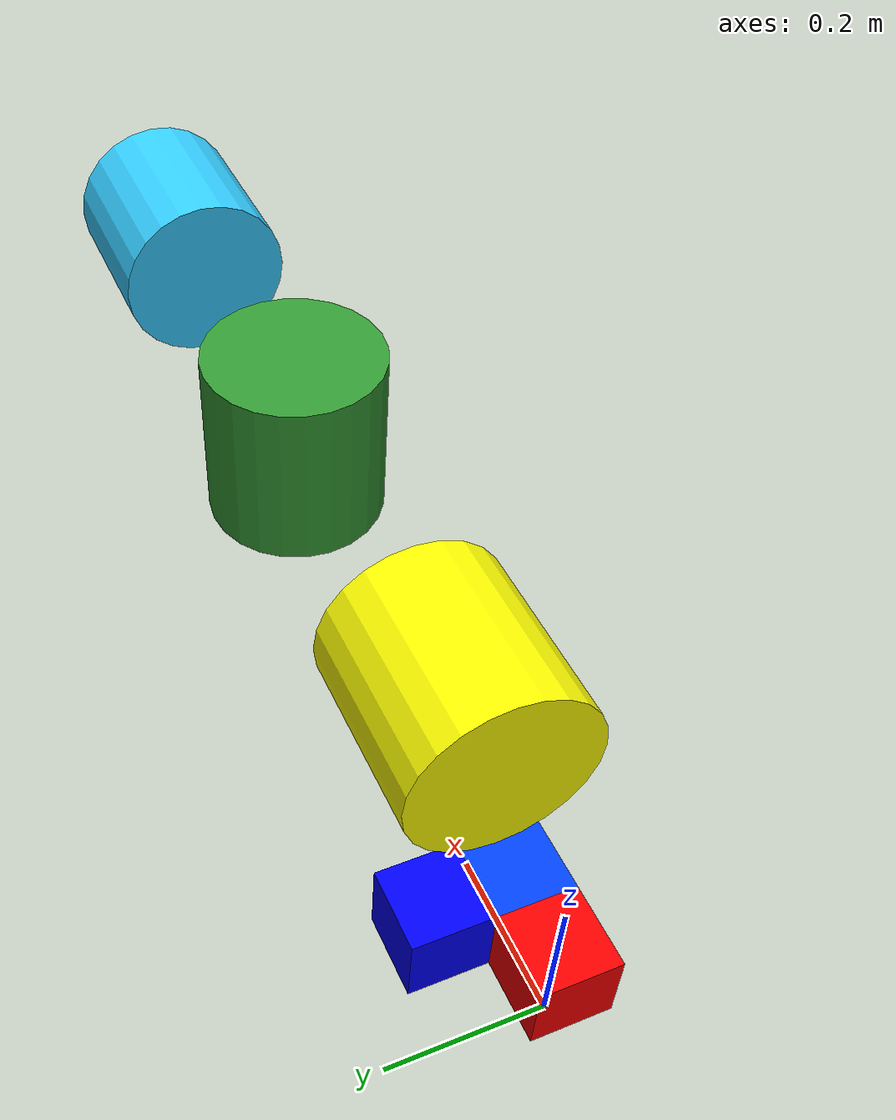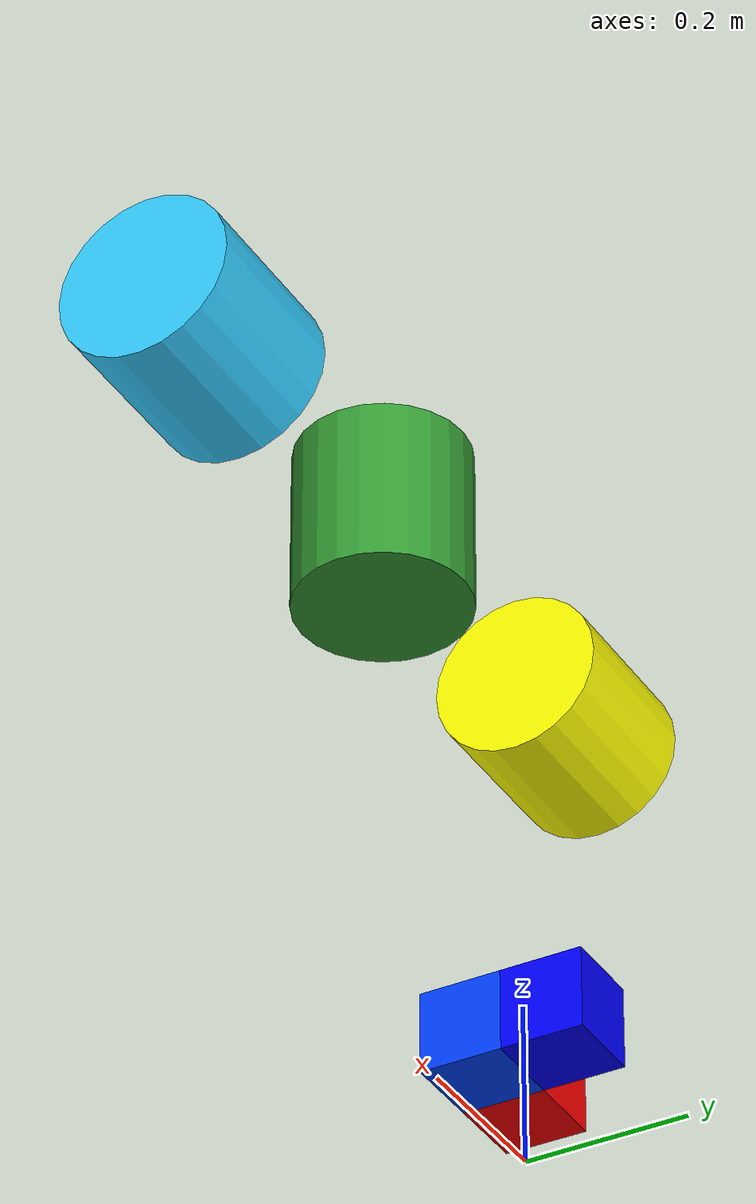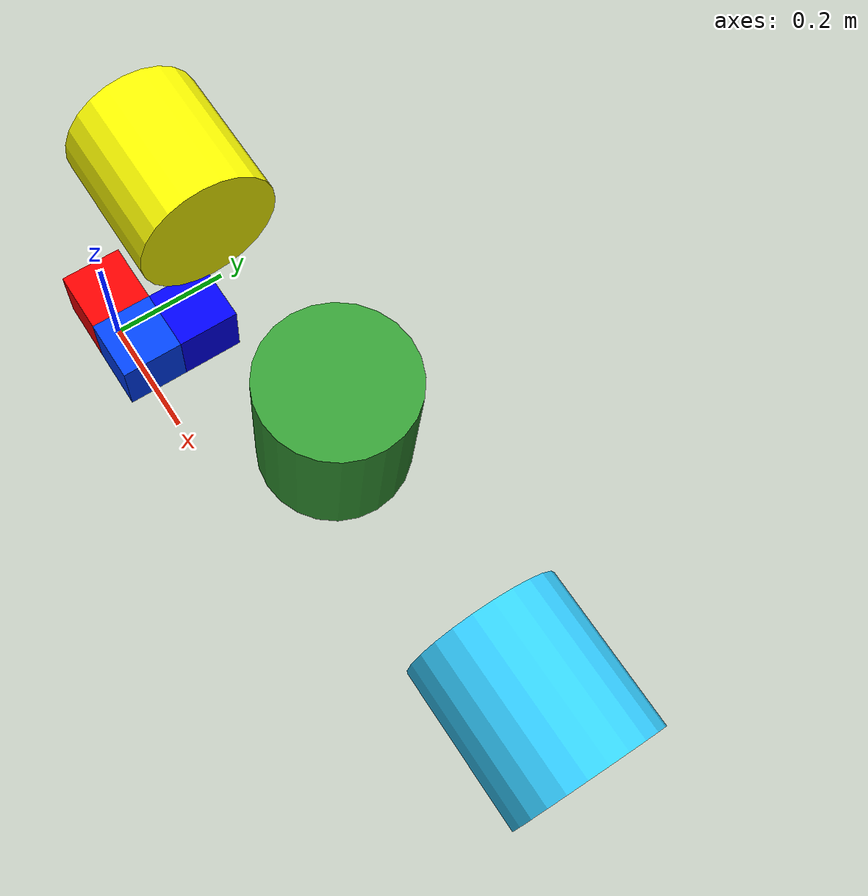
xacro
<?xml version="1.1" encoding="utf-8"?>
<!-- This URDF was made by Anton Kirilin with the help of ros wiki, Albert's guthub -->

<robot xmlns:xacro="http://ros.org/wiki/xacro" name="grip">

<!-- Creating Gloabl variables for the links -->

<xacro:property name="the_radius" value="0.1" />
<xacro:property name="the_length" value="0.2" />
<xacro:property name="the_box_size" value="0.1 0.1 0.1" />

<!--           Function for creating a box link             -->

<xacro:macro name="create_box_link" params="prefix rgba color">
 <link name="${prefix}_link">
   <visual>
     <origin xyz="0 0 0" rpy="0 0 0" />
     <geometry>
       <box size="${the_box_size}" />
     </geometry>
     <material name="${color}">
       <color rgba="${rgba}"/>
     </material>
   </visual>
 </link>
</xacro:macro>

<!--         Function for creating a cylindric link         -->

<xacro:macro name="create_cyl_link" params="prefix rpy rgba color">
 <link name="${prefix}_link">
   <visual>
     <origin xyz="0 0 0" rpy="${rpy}" />
     <geometry>
       <cylinder radius="${the_radius}" length="${the_length}"/>
     </geometry>
     <material name="${color}">
       <color rgba="${rgba}"/>
     </material>
   </visual>
 </link>
</xacro:macro>

<!--              Function for creating a prismatic joint             -->

<xacro:macro name="create_prism_joint" params="prefix xyz parent child axis">
    <joint name="joint_${prefix}" type="prismatic">
        <origin xyz="${xyz}" rpy="0.0 0.0 0.0"/>
        <parent link="${parent}_link"/>
        <child link="${child}_link"/>
        <axis xyz="${axis}"/>
        <limit effort="1.0" velocity="1.0" lower="0" upper="1.0" />
    </joint>
</xacro:macro>

<!--              Function for creating a revolute joint             -->

<xacro:macro name="create_rev_joint" params="prefix xyz parent child axis">
    <joint name="joint_${prefix}" type="revolute">
        <origin xyz="${xyz}" rpy="0.0 0.0 0.0"/>
        <parent link="${parent}_link"/>
        <child link="${child}_link"/>
        <axis xyz="${axis}"/>
        <limit effort="1.0" velocity="1.0" lower="-3.14" upper="3.14" />
    </joint>
</xacro:macro>

<!-- Declaration of the links and joints using the predefined macroses above -->

 <link name="ground_frame">
 	<origin xyz="0.0 0.0 0.0" rpy="0.0 0.0 0.0"/>
 </link>

<xacro:create_box_link
prefix="1"
rgba="1.0 0.0 0.0 1.0"
color="Red"
/>

<!-- here I just connect the first link to the ground frame-->
 <joint name="rev1" type="fixed">
    <origin xyz="0.0 0.0 0.1" rpy="0.0 0.0 0.0"/>
    <parent link="ground_frame"/>
    <child link="1_link"/>
</joint>

<xacro:create_box_link
prefix="2"
rgba="0.0 0.25 1.0 1.0"
color="light_blue"
/>

<xacro:create_prism_joint
prefix="1"
xyz="0.1 0.0 0.0"
child="2"
parent="1"
axis="1 0 0"
/>

<xacro:create_box_link
prefix="3"
rgba="0.0 0.0 1.0 1.0"
color="blue"
/>

<xacro:create_prism_joint
prefix="2"
xyz="0.0 0.1 0.0"
parent="2"
child="3"
axis="0 1 0"
/>

<xacro:create_cyl_link
prefix="4"
rpy="0.0 1.57 0.0"
rgba="1.0 1.0 0.0 1.0"
color="yellow"
/>

<xacro:create_rev_joint
prefix="3"
xyz="0.0 0.0 0.4"
parent="3"
child="4"
axis="1 0 0"
/>

<xacro:create_cyl_link
prefix="5"
rpy="0.0 0.0 0.0"
rgba="0.2 0.6 0.2 1.0"
color="vomit"
/>

<xacro:create_rev_joint
prefix="4"
xyz="0.4 0.0 0.0"
parent="4"
child="5"
axis="0 0 1"
/>

<xacro:create_cyl_link
prefix="6"
rpy="0.0 1.57 0.0"
rgba="0.2 0.8 1.0 1.0"
color="cyan"
/>

<xacro:create_rev_joint
prefix="6"
xyz="0.4 0.0 0.0"
parent="5"
child="6"
axis="1 0 0"
/>

</robot>
